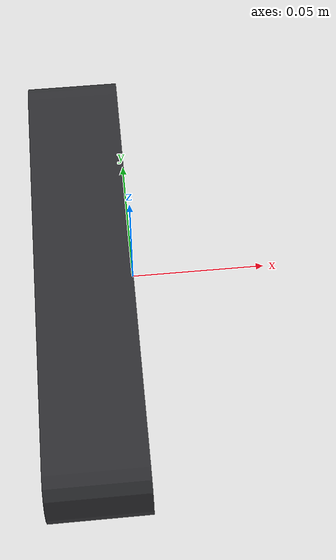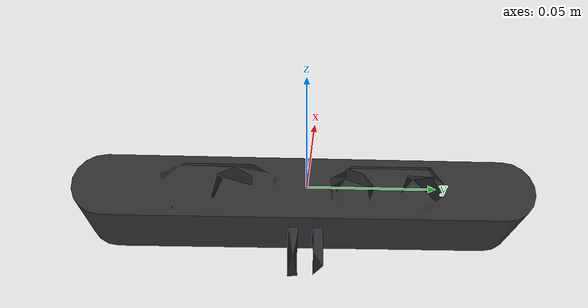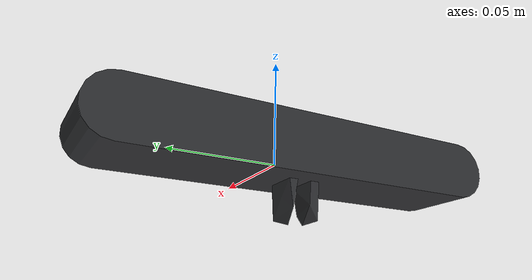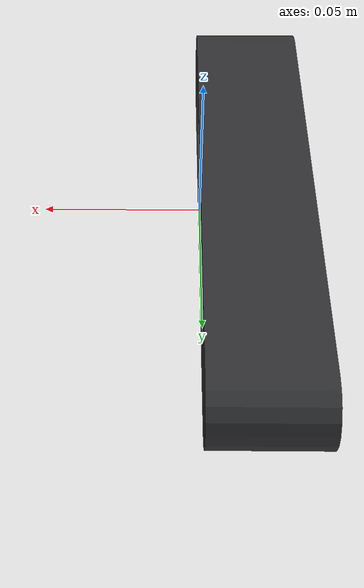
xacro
<robot name="Asus_Camera_link"><link name="Asus_Camera_link">
    <inertial>
      <origin rpy="0 0 0" xyz="-0.0187798361475048 -0.000287133366772307 -0.000201032384153296" />
      <mass value="0.150306955527936" />
      <inertia ixx="0.00039928218741962" ixy="-5.34870767194659E-07" ixz="-1.37242873517293E-08" iyy="2.36182089627434E-05" iyz="-8.67618422000016E-09" izz="0.000406064964123578" />
    </inertial>
    <visual>
      <origin rpy="0 0 0" xyz="0 0 0" />
      <geometry>
        <mesh filename="package://robotican_description/komodo/meshes/Asus_Camera_link.STL" />
      </geometry>
      <material name="">
        <color rgba="0.1792156862745098 0.1819607843137255 0.1933333333333333 1" />
      </material>
    </visual>
    <collision>
      <origin rpy="0 0 0" xyz="0 0 0" />
      <geometry>
        <mesh filename="package://robotican_description/komodo/meshes/Asus_Camera_link.STL" />
      </geometry>
    </collision>
  </link>
  </robot>
